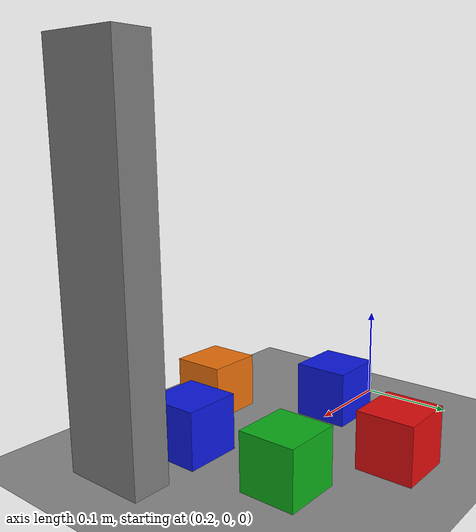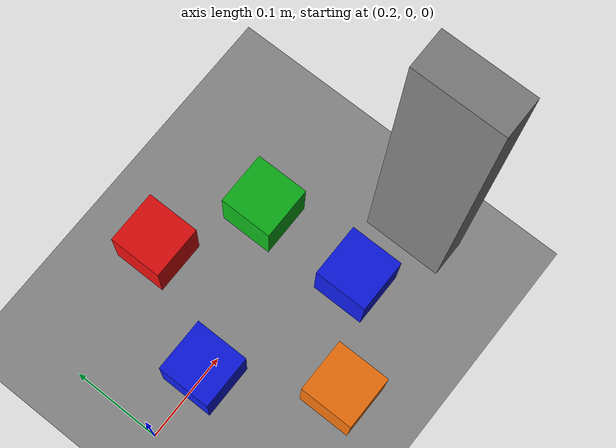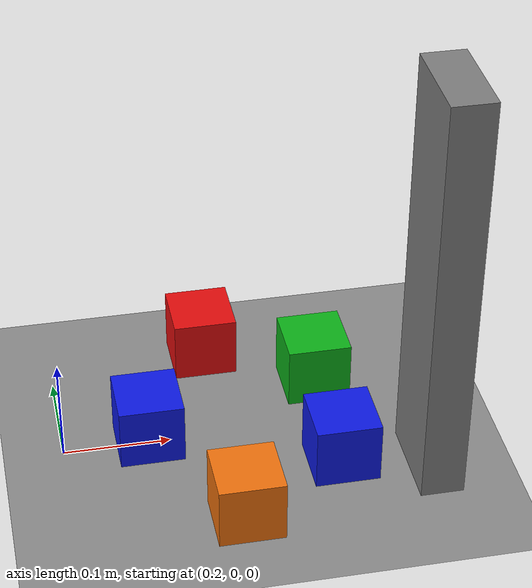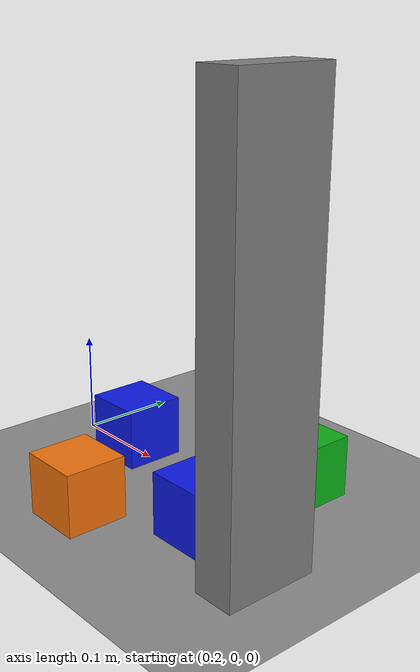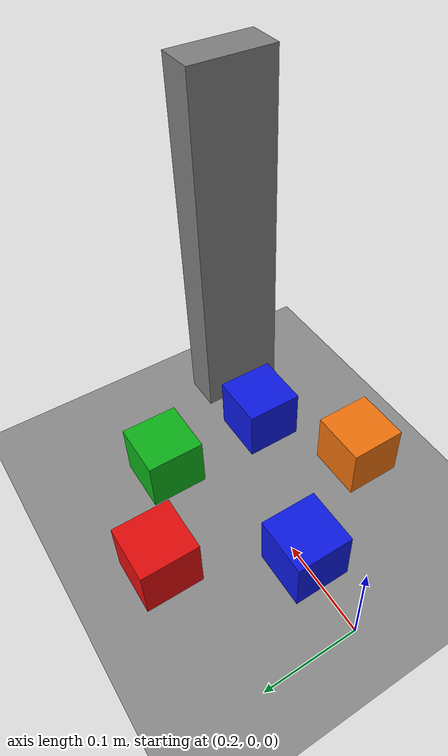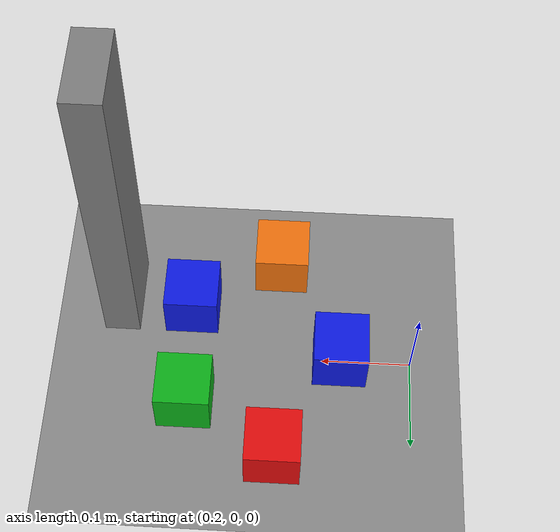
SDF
<?xml version="1.0"?>
<sdf version="1.9">
  <world name="color_challenge">
    <physics name="1ms" type="ignored">
      <max_step_size>0.001</max_step_size>
      <real_time_factor>1.0</real_time_factor>
    </physics>
    <plugin filename="gz-sim-physics-system" name="gz::sim::systems::Physics"/>
    <plugin filename="gz-sim-user-commands-system" name="gz::sim::systems::UserCommands"/>
    <plugin filename="gz-sim-scene-broadcaster-system" name="gz::sim::systems::SceneBroadcaster"/>
    <plugin filename="gz-sim-sensors-system" name="gz::sim::systems::Sensors">
      <render_engine>ogre2</render_engine>
    </plugin>
    <plugin filename="gz-sim-imu-system" name="gz::sim::systems::Imu"/>

    <scene>
      <ambient>0.6 0.6 0.6 1</ambient>
      <background>0.8 0.8 0.8 1</background>
      <grid>false</grid>
    </scene>

    <light type="directional" name="sun">
      <cast_shadows>true</cast_shadows>
      <pose>0 0 10 0 0 0</pose>
      <diffuse>0.9 0.9 0.9 1</diffuse>
      <specular>0.2 0.2 0.2 1</specular>
      <direction>-0.5 0.1 -0.9</direction>
    </light>

    <model name="ground_plane">
      <static>true</static>
      <link name="link">
        <collision name="c"><geometry><plane><normal>0 0 1</normal><size>6 6</size></plane></geometry></collision>
        <visual name="v"><geometry><plane><normal>0 0 1</normal><size>6 6</size></plane></geometry>
          <material><ambient>0.55 0.55 0.55 1</ambient><diffuse>0.55 0.55 0.55 1</diffuse></material></visual>
      </link>
    </model>
    <model name="red_target">
      <static>true</static>
      <pose>0.35 0.12 0.03 0 0 0</pose>
      <link name="link"><visual name="v"><geometry><box><size>0.06 0.06 0.06</size></box></geometry>
        <material><ambient>0.9 0.05 0.05 1</ambient><diffuse>0.9 0.05 0.05 1</diffuse></material></visual></link>
    </model>
    <model name="orange_decoy">
      <static>true</static>
      <pose>0.35 -0.12 0.03 0 0 0</pose>
      <link name="link"><visual name="v"><geometry><box><size>0.06 0.06 0.06</size></box></geometry>
        <material><ambient>0.95 0.45 0.05 1</ambient><diffuse>0.95 0.45 0.05 1</diffuse></material></visual></link>
    </model>
    <model name="green_target">
      <static>true</static>
      <pose>0.45 0.06 0.03 0 0 0</pose>
      <link name="link"><visual name="v"><geometry><box><size>0.06 0.06 0.06</size></box></geometry>
        <material><ambient>0.05 0.7 0.1 1</ambient><diffuse>0.05 0.7 0.1 1</diffuse></material></visual></link>
    </model>
    <model name="shade_block">
      <static>true</static>
      <pose>0.53 -0.075 0.2 0 0 0</pose>
      <link name="link"><visual name="v"><geometry><box><size>0.04 0.09 0.4</size></box></geometry>
        <material><ambient>0.5 0.5 0.5 1</ambient><diffuse>0.5 0.5 0.5 1</diffuse></material></visual></link>
    </model>
    <model name="blue_target">
      <static>true</static>
      <pose>0.45 -0.06 0.03 0 0 0</pose>
      <link name="link"><visual name="v"><geometry><box><size>0.06 0.06 0.06</size></box></geometry>
        <material><ambient>0.05 0.1 0.9 1</ambient><diffuse>0.05 0.1 0.9 1</diffuse></material></visual></link>
    </model>
    <model name="blue_shade">
      <static>true</static>
      <pose>0.28 0.0 0.03 0 0 0</pose>
      <link name="link"><visual name="v"><geometry><box><size>0.06 0.06 0.06</size></box></geometry>
        <material><ambient>0.05 0.1 0.9 1</ambient><diffuse>0.05 0.1 0.9 1</diffuse></material></visual></link>
    </model>
  </world>
</sdf>
